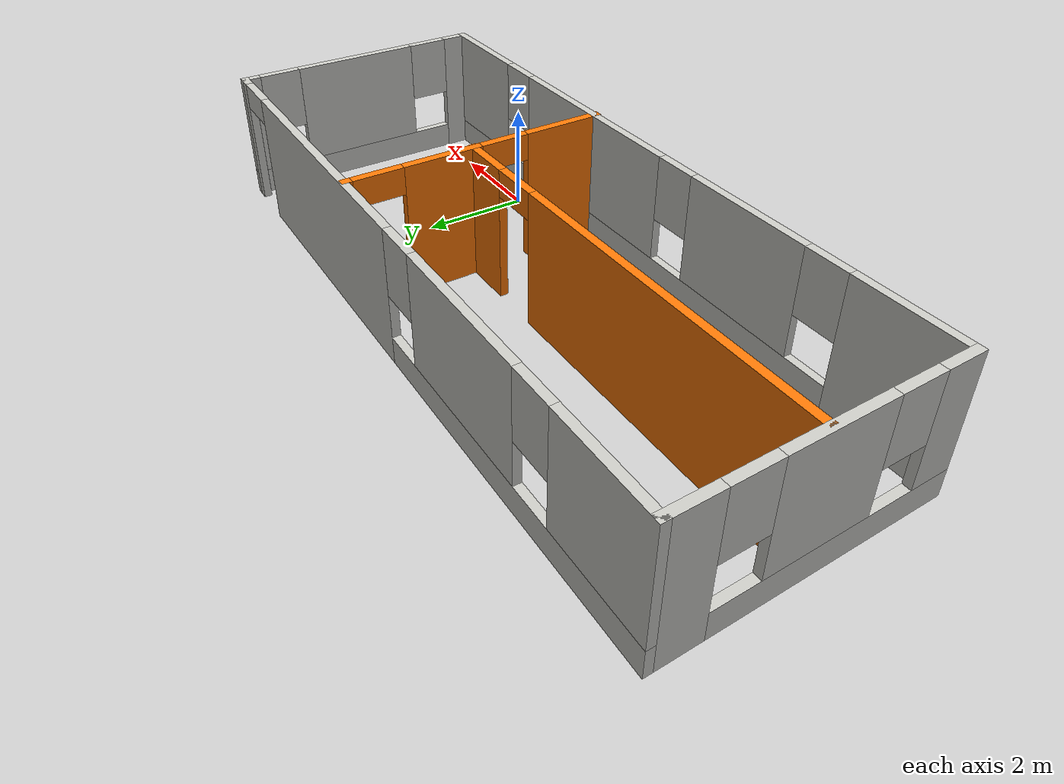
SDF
<?xml version='1.0'?>
<sdf version='1.6'>
  <model name='mybuilding'>
    <pose frame=''>-3.22125 1.87257 0 0 -0 0</pose>
    <link name='Wall_26'>
      <pose frame=''>0 -2.41239 0 0 -0 0</pose>
      <visual name='Wall_26_Visual_0'>
        <pose frame=''>-5.50386 0 1.25 0 -0 0</pose>
        <geometry>
          <box>
            <size>1.99228 0.15 2.5</size>
          </box>
        </geometry>
        <material>
          <script>
            <uri>file://media/materials/scripts/gazebo.material</uri>
            <name>Gazebo/CeilingTiled</name>
          </script>
          <ambient>1 1 1 1</ambient>
        </material>
        <meta>
          <layer>0</layer>
        </meta>
      </visual>
      <collision name='Wall_26_Collision_0'>
        <geometry>
          <box>
            <size>1.99228 0.15 2.5</size>
          </box>
        </geometry>
        <pose frame=''>-5.50386 0 1.25 0 -0 0</pose>
      </collision>
      <visual name='Wall_26_Visual_1'>
        <pose frame=''>0.996138 0 0.25 0 -0 0</pose>
        <geometry>
          <box>
            <size>11.0077 0.15 0.5</size>
          </box>
        </geometry>
        <material>
          <script>
            <uri>file://media/materials/scripts/gazebo.material</uri>
            <name>Gazebo/CeilingTiled</name>
          </script>
          <ambient>1 1 1 1</ambient>
        </material>
        <meta>
          <layer>0</layer>
        </meta>
      </visual>
      <collision name='Wall_26_Collision_1'>
        <geometry>
          <box>
            <size>11.0077 0.15 0.5</size>
          </box>
        </geometry>
        <pose frame=''>0.996138 0 0.25 0 -0 0</pose>
      </collision>
      <visual name='Wall_26_Visual_2'>
        <pose frame=''>-2.49082 0 1.5 0 -0 0</pose>
        <geometry>
          <box>
            <size>2.43381 0.15 2</size>
          </box>
        </geometry>
        <material>
          <script>
            <uri>file://media/materials/scripts/gazebo.material</uri>
            <name>Gazebo/CeilingTiled</name>
          </script>
          <ambient>1 1 1 1</ambient>
        </material>
        <meta>
          <layer>0</layer>
        </meta>
      </visual>
      <collision name='Wall_26_Collision_2'>
        <geometry>
          <box>
            <size>2.43381 0.15 2</size>
          </box>
        </geometry>
        <pose frame=''>-2.49082 0 1.5 0 -0 0</pose>
      </collision>
      <visual name='Wall_26_Visual_3'>
        <pose frame=''>1.55577 0 1.5 0 -0 0</pose>
        <geometry>
          <box>
            <size>4.05936 0.15 2</size>
          </box>
        </geometry>
        <material>
          <script>
            <uri>file://media/materials/scripts/gazebo.material</uri>
            <name>Gazebo/CeilingTiled</name>
          </script>
          <ambient>1 1 1 1</ambient>
        </material>
        <meta>
          <layer>0</layer>
        </meta>
      </visual>
      <collision name='Wall_26_Collision_3'>
        <geometry>
          <box>
            <size>4.05936 0.15 2</size>
          </box>
        </geometry>
        <pose frame=''>1.55577 0 1.5 0 -0 0</pose>
      </collision>
      <visual name='Wall_26_Visual_4'>
        <pose frame=''>5.44272 0 1.5 0 -0 0</pose>
        <geometry>
          <box>
            <size>2.11455 0.15 2</size>
          </box>
        </geometry>
        <material>
          <script>
            <uri>file://media/materials/scripts/gazebo.material</uri>
            <name>Gazebo/CeilingTiled</name>
          </script>
          <ambient>1 1 1 1</ambient>
        </material>
        <meta>
          <layer>0</layer>
        </meta>
      </visual>
      <collision name='Wall_26_Collision_4'>
        <geometry>
          <box>
            <size>2.11455 0.15 2</size>
          </box>
        </geometry>
        <pose frame=''>5.44272 0 1.5 0 -0 0</pose>
      </collision>
      <visual name='Wall_26_Visual_5'>
        <pose frame=''>-4.10772 0 1.9 0 -0 0</pose>
        <geometry>
          <box>
            <size>0.8 0.15 1.2</size>
          </box>
        </geometry>
        <material>
          <script>
            <uri>file://media/materials/scripts/gazebo.material</uri>
            <name>Gazebo/CeilingTiled</name>
          </script>
          <ambient>1 1 1 1</ambient>
        </material>
        <meta>
          <layer>0</layer>
        </meta>
      </visual>
      <collision name='Wall_26_Collision_5'>
        <geometry>
          <box>
            <size>0.8 0.15 1.2</size>
          </box>
        </geometry>
        <pose frame=''>-4.10772 0 1.9 0 -0 0</pose>
      </collision>
      <visual name='Wall_26_Visual_6'>
        <pose frame=''>-0.873914 0 1.9 0 -0 0</pose>
        <geometry>
          <box>
            <size>0.8 0.15 1.2</size>
          </box>
        </geometry>
        <material>
          <script>
            <uri>file://media/materials/scripts/gazebo.material</uri>
            <name>Gazebo/CeilingTiled</name>
          </script>
          <ambient>1 1 1 1</ambient>
        </material>
        <meta>
          <layer>0</layer>
        </meta>
      </visual>
      <collision name='Wall_26_Collision_6'>
        <geometry>
          <box>
            <size>0.8 0.15 1.2</size>
          </box>
        </geometry>
        <pose frame=''>-0.873914 0 1.9 0 -0 0</pose>
      </collision>
      <visual name='Wall_26_Visual_7'>
        <pose frame=''>3.98545 0 1.9 0 -0 0</pose>
        <geometry>
          <box>
            <size>0.8 0.15 1.2</size>
          </box>
        </geometry>
        <material>
          <script>
            <uri>file://media/materials/scripts/gazebo.material</uri>
            <name>Gazebo/CeilingTiled</name>
          </script>
          <ambient>1 1 1 1</ambient>
        </material>
        <meta>
          <layer>0</layer>
        </meta>
      </visual>
      <collision name='Wall_26_Collision_7'>
        <geometry>
          <box>
            <size>0.8 0.15 1.2</size>
          </box>
        </geometry>
        <pose frame=''>3.98545 0 1.9 0 -0 0</pose>
      </collision>
    </link>
    <link name='Wall_27'>
      <pose frame=''>6.425 0.012612 0 0 -0 1.5708</pose>
      <visual name='Wall_27_Visual_0'>
        <pose frame=''>-2.21288 0 1.25 0 -0 0</pose>
        <geometry>
          <box>
            <size>0.574241 0.15 2.5</size>
          </box>
        </geometry>
        <material>
          <script>
            <uri>file://media/materials/scripts/gazebo.material</uri>
            <name>Gazebo/CeilingTiled</name>
          </script>
          <ambient>1 1 1 1</ambient>
        </material>
        <meta>
          <layer>0</layer>
        </meta>
      </visual>
      <collision name='Wall_27_Collision_0'>
        <geometry>
          <box>
            <size>0.574241 0.15 2.5</size>
          </box>
        </geometry>
        <pose frame=''>-2.21288 0 1.25 0 -0 0</pose>
      </collision>
      <visual name='Wall_27_Visual_1'>
        <pose frame=''>0.287121 0 0.25 0 -0 0</pose>
        <geometry>
          <box>
            <size>4.42576 0.15 0.5</size>
          </box>
        </geometry>
        <material>
          <script>
            <uri>file://media/materials/scripts/gazebo.material</uri>
            <name>Gazebo/CeilingTiled</name>
          </script>
          <ambient>1 1 1 1</ambient>
        </material>
        <meta>
          <layer>0</layer>
        </meta>
      </visual>
      <collision name='Wall_27_Collision_1'>
        <geometry>
          <box>
            <size>4.42576 0.15 0.5</size>
          </box>
        </geometry>
        <pose frame=''>0.287121 0 0.25 0 -0 0</pose>
      </collision>
      <visual name='Wall_27_Visual_2'>
        <pose frame=''>0.10844 0 1.5 0 -0 0</pose>
        <geometry>
          <box>
            <size>2.4684 0.15 2</size>
          </box>
        </geometry>
        <material>
          <script>
            <uri>file://media/materials/scripts/gazebo.material</uri>
            <name>Gazebo/CeilingTiled</name>
          </script>
          <ambient>1 1 1 1</ambient>
        </material>
        <meta>
          <layer>0</layer>
        </meta>
      </visual>
      <collision name='Wall_27_Collision_2'>
        <geometry>
          <box>
            <size>2.4684 0.15 2</size>
          </box>
        </geometry>
        <pose frame=''>0.10844 0 1.5 0 -0 0</pose>
      </collision>
      <visual name='Wall_27_Visual_3'>
        <pose frame=''>2.32132 0 1.5 0 -0 0</pose>
        <geometry>
          <box>
            <size>0.357362 0.15 2</size>
          </box>
        </geometry>
        <material>
          <script>
            <uri>file://media/materials/scripts/gazebo.material</uri>
            <name>Gazebo/CeilingTiled</name>
          </script>
          <ambient>1 1 1 1</ambient>
        </material>
        <meta>
          <layer>0</layer>
        </meta>
      </visual>
      <collision name='Wall_27_Collision_3'>
        <geometry>
          <box>
            <size>0.357362 0.15 2</size>
          </box>
        </geometry>
        <pose frame=''>2.32132 0 1.5 0 -0 0</pose>
      </collision>
      <visual name='Wall_27_Visual_4'>
        <pose frame=''>-1.52576 0 1.9 0 -0 0</pose>
        <geometry>
          <box>
            <size>0.8 0.15 1.2</size>
          </box>
        </geometry>
        <material>
          <script>
            <uri>file://media/materials/scripts/gazebo.material</uri>
            <name>Gazebo/CeilingTiled</name>
          </script>
          <ambient>1 1 1 1</ambient>
        </material>
        <meta>
          <layer>0</layer>
        </meta>
      </visual>
      <collision name='Wall_27_Collision_4'>
        <geometry>
          <box>
            <size>0.8 0.15 1.2</size>
          </box>
        </geometry>
        <pose frame=''>-1.52576 0 1.9 0 -0 0</pose>
      </collision>
      <visual name='Wall_27_Visual_5'>
        <pose frame=''>1.74264 0 1.9 0 -0 0</pose>
        <geometry>
          <box>
            <size>0.8 0.15 1.2</size>
          </box>
        </geometry>
        <material>
          <script>
            <uri>file://media/materials/scripts/gazebo.material</uri>
            <name>Gazebo/CeilingTiled</name>
          </script>
          <ambient>1 1 1 1</ambient>
        </material>
        <meta>
          <layer>0</layer>
        </meta>
      </visual>
      <collision name='Wall_27_Collision_5'>
        <geometry>
          <box>
            <size>0.8 0.15 1.2</size>
          </box>
        </geometry>
        <pose frame=''>1.74264 0 1.9 0 -0 0</pose>
      </collision>
    </link>
    <link name='Wall_28'>
      <pose frame=''>0 2.43761 0 0 -0 3.14159</pose>
      <visual name='Wall_28_Visual_0'>
        <pose frame=''>-6.33238 0 1.25 0 -0 0</pose>
        <geometry>
          <box>
            <size>0.335241 0.15 2.5</size>
          </box>
        </geometry>
        <material>
          <script>
            <uri>file://media/materials/scripts/gazebo.material</uri>
            <name>Gazebo/CeilingTiled</name>
          </script>
          <ambient>1 1 1 1</ambient>
        </material>
        <meta>
          <layer>0</layer>
        </meta>
      </visual>
      <collision name='Wall_28_Collision_0'>
        <geometry>
          <box>
            <size>0.335241 0.15 2.5</size>
          </box>
        </geometry>
        <pose frame=''>-6.33238 0 1.25 0 -0 0</pose>
      </collision>
      <visual name='Wall_28_Visual_1'>
        <pose frame=''>-2.55971 0 1.25 0 -0 0</pose>
        <geometry>
          <box>
            <size>5.4101 0.15 2.5</size>
          </box>
        </geometry>
        <material>
          <script>
            <uri>file://media/materials/scripts/gazebo.material</uri>
            <name>Gazebo/CeilingTiled</name>
          </script>
          <ambient>1 1 1 1</ambient>
        </material>
        <meta>
          <layer>0</layer>
        </meta>
      </visual>
      <collision name='Wall_28_Collision_1'>
        <geometry>
          <box>
            <size>5.4101 0.15 2.5</size>
          </box>
        </geometry>
        <pose frame=''>-2.55971 0 1.25 0 -0 0</pose>
      </collision>
      <visual name='Wall_28_Visual_2'>
        <pose frame=''>3.32267 0 0.25 0 -0 0</pose>
        <geometry>
          <box>
            <size>6.35466 0.15 0.5</size>
          </box>
        </geometry>
        <material>
          <script>
            <uri>file://media/materials/scripts/gazebo.material</uri>
            <name>Gazebo/CeilingTiled</name>
          </script>
          <ambient>1 1 1 1</ambient>
        </material>
        <meta>
          <layer>0</layer>
        </meta>
      </visual>
      <collision name='Wall_28_Collision_2'>
        <geometry>
          <box>
            <size>6.35466 0.15 0.5</size>
          </box>
        </geometry>
        <pose frame=''>3.32267 0 0.25 0 -0 0</pose>
      </collision>
      <visual name='Wall_28_Visual_3'>
        <pose frame=''>2.35247 0 1.5 0 -0 0</pose>
        <geometry>
          <box>
            <size>2.81426 0.15 2</size>
          </box>
        </geometry>
        <material>
          <script>
            <uri>file://media/materials/scripts/gazebo.material</uri>
            <name>Gazebo/CeilingTiled</name>
          </script>
          <ambient>1 1 1 1</ambient>
        </material>
        <meta>
          <layer>0</layer>
        </meta>
      </visual>
      <collision name='Wall_28_Collision_3'>
        <geometry>
          <box>
            <size>2.81426 0.15 2</size>
          </box>
        </geometry>
        <pose frame=''>2.35247 0 1.5 0 -0 0</pose>
      </collision>
      <visual name='Wall_28_Visual_4'>
        <pose frame=''>5.5298 0 1.5 0 -0 0</pose>
        <geometry>
          <box>
            <size>1.9404 0.15 2</size>
          </box>
        </geometry>
        <material>
          <script>
            <uri>file://media/materials/scripts/gazebo.material</uri>
            <name>Gazebo/CeilingTiled</name>
          </script>
          <ambient>1 1 1 1</ambient>
        </material>
        <meta>
          <layer>0</layer>
        </meta>
      </visual>
      <collision name='Wall_28_Collision_4'>
        <geometry>
          <box>
            <size>1.9404 0.15 2</size>
          </box>
        </geometry>
        <pose frame=''>5.5298 0 1.5 0 -0 0</pose>
      </collision>
      <visual name='Wall_28_Visual_5'>
        <pose frame=''>0.545345 0 1.9 0 -0 0</pose>
        <geometry>
          <box>
            <size>0.8 0.15 1.2</size>
          </box>
        </geometry>
        <material>
          <script>
            <uri>file://media/materials/scripts/gazebo.material</uri>
            <name>Gazebo/CeilingTiled</name>
          </script>
          <ambient>1 1 1 1</ambient>
        </material>
        <meta>
          <layer>0</layer>
        </meta>
      </visual>
      <collision name='Wall_28_Collision_5'>
        <geometry>
          <box>
            <size>0.8 0.15 1.2</size>
          </box>
        </geometry>
        <pose frame=''>0.545345 0 1.9 0 -0 0</pose>
      </collision>
      <visual name='Wall_28_Visual_6'>
        <pose frame=''>4.1596 0 1.9 0 -0 0</pose>
        <geometry>
          <box>
            <size>0.8 0.15 1.2</size>
          </box>
        </geometry>
        <material>
          <script>
            <uri>file://media/materials/scripts/gazebo.material</uri>
            <name>Gazebo/CeilingTiled</name>
          </script>
          <ambient>1 1 1 1</ambient>
        </material>
        <meta>
          <layer>0</layer>
        </meta>
      </visual>
      <collision name='Wall_28_Collision_6'>
        <geometry>
          <box>
            <size>0.8 0.15 1.2</size>
          </box>
        </geometry>
        <pose frame=''>4.1596 0 1.9 0 -0 0</pose>
      </collision>
      <visual name='Wall_28_Visual_7'>
        <pose frame=''>-5.71476 0 2.25 0 -0 0</pose>
        <geometry>
          <box>
            <size>0.9 0.15 0.5</size>
          </box>
        </geometry>
        <material>
          <script>
            <uri>file://media/materials/scripts/gazebo.material</uri>
            <name>Gazebo/CeilingTiled</name>
          </script>
          <ambient>1 1 1 1</ambient>
        </material>
        <meta>
          <layer>0</layer>
        </meta>
      </visual>
      <collision name='Wall_28_Collision_7'>
        <geometry>
          <box>
            <size>0.9 0.15 0.5</size>
          </box>
        </geometry>
        <pose frame=''>-5.71476 0 2.25 0 -0 0</pose>
      </collision>
    </link>
    <link name='Wall_29'>
      <pose frame=''>-6.425 0.012612 0 0 0 -1.5708</pose>
      <visual name='Wall_29_Visual_0'>
        <pose frame=''>-2.05328 0 1.25 0 -0 0</pose>
        <geometry>
          <box>
            <size>0.893448 0.15 2.5</size>
          </box>
        </geometry>
        <material>
          <script>
            <uri>file://media/materials/scripts/gazebo.material</uri>
            <name>Gazebo/CeilingTiled</name>
          </script>
          <ambient>1 1 1 1</ambient>
        </material>
        <meta>
          <layer>0</layer>
        </meta>
      </visual>
      <collision name='Wall_29_Collision_0'>
        <geometry>
          <box>
            <size>0.893448 0.15 2.5</size>
          </box>
        </geometry>
        <pose frame=''>-2.05328 0 1.25 0 -0 0</pose>
      </collision>
      <visual name='Wall_29_Visual_1'>
        <pose frame=''>0.446724 0 0.25 0 -0 0</pose>
        <geometry>
          <box>
            <size>4.10655 0.15 0.5</size>
          </box>
        </geometry>
        <material>
          <script>
            <uri>file://media/materials/scripts/gazebo.material</uri>
            <name>Gazebo/CeilingTiled</name>
          </script>
          <ambient>1 1 1 1</ambient>
        </material>
        <meta>
          <layer>0</layer>
        </meta>
      </visual>
      <collision name='Wall_29_Collision_1'>
        <geometry>
          <box>
            <size>4.10655 0.15 0.5</size>
          </box>
        </geometry>
        <pose frame=''>0.446724 0 0.25 0 -0 0</pose>
      </collision>
      <visual name='Wall_29_Visual_2'>
        <pose frame=''>0.090431 0 1.5 0 -0 0</pose>
        <geometry>
          <box>
            <size>1.79397 0.15 2</size>
          </box>
        </geometry>
        <material>
          <script>
            <uri>file://media/materials/scripts/gazebo.material</uri>
            <name>Gazebo/CeilingTiled</name>
          </script>
          <ambient>1 1 1 1</ambient>
        </material>
        <meta>
          <layer>0</layer>
        </meta>
      </visual>
      <collision name='Wall_29_Collision_2'>
        <geometry>
          <box>
            <size>1.79397 0.15 2</size>
          </box>
        </geometry>
        <pose frame=''>0.090431 0 1.5 0 -0 0</pose>
      </collision>
      <visual name='Wall_29_Visual_3'>
        <pose frame=''>2.14371 0 1.5 0 -0 0</pose>
        <geometry>
          <box>
            <size>0.712586 0.15 2</size>
          </box>
        </geometry>
        <material>
          <script>
            <uri>file://media/materials/scripts/gazebo.material</uri>
            <name>Gazebo/CeilingTiled</name>
          </script>
          <ambient>1 1 1 1</ambient>
        </material>
        <meta>
          <layer>0</layer>
        </meta>
      </visual>
      <collision name='Wall_29_Collision_3'>
        <geometry>
          <box>
            <size>0.712586 0.15 2</size>
          </box>
        </geometry>
        <pose frame=''>2.14371 0 1.5 0 -0 0</pose>
      </collision>
      <visual name='Wall_29_Visual_4'>
        <pose frame=''>-1.20655 0 1.9 0 -0 0</pose>
        <geometry>
          <box>
            <size>0.8 0.15 1.2</size>
          </box>
        </geometry>
        <material>
          <script>
            <uri>file://media/materials/scripts/gazebo.material</uri>
            <name>Gazebo/CeilingTiled</name>
          </script>
          <ambient>1 1 1 1</ambient>
        </material>
        <meta>
          <layer>0</layer>
        </meta>
      </visual>
      <collision name='Wall_29_Collision_4'>
        <geometry>
          <box>
            <size>0.8 0.15 1.2</size>
          </box>
        </geometry>
        <pose frame=''>-1.20655 0 1.9 0 -0 0</pose>
      </collision>
      <visual name='Wall_29_Visual_5'>
        <pose frame=''>1.38741 0 1.9 0 -0 0</pose>
        <geometry>
          <box>
            <size>0.8 0.15 1.2</size>
          </box>
        </geometry>
        <material>
          <script>
            <uri>file://media/materials/scripts/gazebo.material</uri>
            <name>Gazebo/CeilingTiled</name>
          </script>
          <ambient>1 1 1 1</ambient>
        </material>
        <meta>
          <layer>0</layer>
        </meta>
      </visual>
      <collision name='Wall_29_Collision_5'>
        <geometry>
          <box>
            <size>0.8 0.15 1.2</size>
          </box>
        </geometry>
        <pose frame=''>1.38741 0 1.9 0 -0 0</pose>
      </collision>
    </link>
    <link name='Wall_31'>
      <pose frame=''>1.47795 -0.012612 0 0 0 -1.5708</pose>
      <visual name='Wall_31_Visual_0'>
        <pose frame=''>-2.41081 0 1.25 0 -0 0</pose>
        <geometry>
          <box>
            <size>0.178379 0.15 2.5</size>
          </box>
        </geometry>
        <material>
          <script>
            <uri>file://media/materials/scripts/gazebo.material</uri>
            <name>Gazebo/Grey</name>
          </script>
          <ambient>0.996078 0.47451 0.0196078 1</ambient>
        </material>
        <meta>
          <layer>0</layer>
        </meta>
      </visual>
      <collision name='Wall_31_Collision_0'>
        <geometry>
          <box>
            <size>0.178379 0.15 2.5</size>
          </box>
        </geometry>
        <pose frame=''>-2.41081 0 1.25 0 -0 0</pose>
      </collision>
      <visual name='Wall_31_Visual_1'>
        <pose frame=''>-0.687043 0 1.25 0 -0 0</pose>
        <geometry>
          <box>
            <size>1.46915 0.15 2.5</size>
          </box>
        </geometry>
        <material>
          <script>
            <uri>file://media/materials/scripts/gazebo.material</uri>
            <name>Gazebo/Grey</name>
          </script>
          <ambient>0.996078 0.47451 0.0196078 1</ambient>
        </material>
        <meta>
          <layer>0</layer>
        </meta>
      </visual>
      <collision name='Wall_31_Collision_1'>
        <geometry>
          <box>
            <size>1.46915 0.15 2.5</size>
          </box>
        </geometry>
        <pose frame=''>-0.687043 0 1.25 0 -0 0</pose>
      </collision>
      <visual name='Wall_31_Visual_2'>
        <pose frame=''>1.72377 0 1.25 0 -0 0</pose>
        <geometry>
          <box>
            <size>1.55246 0.15 2.5</size>
          </box>
        </geometry>
        <material>
          <script>
            <uri>file://media/materials/scripts/gazebo.material</uri>
            <name>Gazebo/Grey</name>
          </script>
          <ambient>0.996078 0.47451 0.0196078 1</ambient>
        </material>
        <meta>
          <layer>0</layer>
        </meta>
      </visual>
      <collision name='Wall_31_Collision_2'>
        <geometry>
          <box>
            <size>1.55246 0.15 2.5</size>
          </box>
        </geometry>
        <pose frame=''>1.72377 0 1.25 0 -0 0</pose>
      </collision>
      <visual name='Wall_31_Visual_3'>
        <pose frame=''>-1.87162 0 2.25 0 -0 0</pose>
        <geometry>
          <box>
            <size>0.9 0.15 0.5</size>
          </box>
        </geometry>
        <material>
          <script>
            <uri>file://media/materials/scripts/gazebo.material</uri>
            <name>Gazebo/Grey</name>
          </script>
          <ambient>0.996078 0.47451 0.0196078 1</ambient>
        </material>
        <meta>
          <layer>0</layer>
        </meta>
      </visual>
      <collision name='Wall_31_Collision_3'>
        <geometry>
          <box>
            <size>0.9 0.15 0.5</size>
          </box>
        </geometry>
        <pose frame=''>-1.87162 0 2.25 0 -0 0</pose>
      </collision>
      <visual name='Wall_31_Visual_4'>
        <pose frame=''>0.497535 0 2.25 0 -0 0</pose>
        <geometry>
          <box>
            <size>0.9 0.15 0.5</size>
          </box>
        </geometry>
        <material>
          <script>
            <uri>file://media/materials/scripts/gazebo.material</uri>
            <name>Gazebo/Grey</name>
          </script>
          <ambient>0.996078 0.47451 0.0196078 1</ambient>
        </material>
        <meta>
          <layer>0</layer>
        </meta>
      </visual>
      <collision name='Wall_31_Collision_4'>
        <geometry>
          <box>
            <size>0.9 0.15 0.5</size>
          </box>
        </geometry>
        <pose frame=''>0.497535 0 2.25 0 -0 0</pose>
      </collision>
    </link>
    <link name='Wall_33'>
      <pose frame=''>-2.42976 0.077819 0 0 -0 3.14159</pose>
      <visual name='Wall_33_Visual_0'>
        <pose frame=''>-3.47848 0 1.25 0 -0 0</pose>
        <geometry>
          <box>
            <size>1.04303 0.15 2.5</size>
          </box>
        </geometry>
        <material>
          <script>
            <uri>file://media/materials/scripts/gazebo.material</uri>
            <name>Gazebo/Grey</name>
          </script>
          <ambient>0.996078 0.47451 0.0196078 1</ambient>
        </material>
        <meta>
          <layer>0</layer>
        </meta>
      </visual>
      <collision name='Wall_33_Collision_0'>
        <geometry>
          <box>
            <size>1.04303 0.15 2.5</size>
          </box>
        </geometry>
        <pose frame=''>-3.47848 0 1.25 0 -0 0</pose>
      </collision>
      <visual name='Wall_33_Visual_1'>
        <pose frame=''>0.971517 0 1.25 0 -0 0</pose>
        <geometry>
          <box>
            <size>6.05697 0.15 2.5</size>
          </box>
        </geometry>
        <material>
          <script>
            <uri>file://media/materials/scripts/gazebo.material</uri>
            <name>Gazebo/Grey</name>
          </script>
          <ambient>0.996078 0.47451 0.0196078 1</ambient>
        </material>
        <meta>
          <layer>0</layer>
        </meta>
      </visual>
      <collision name='Wall_33_Collision_1'>
        <geometry>
          <box>
            <size>6.05697 0.15 2.5</size>
          </box>
        </geometry>
        <pose frame=''>0.971517 0 1.25 0 -0 0</pose>
      </collision>
      <visual name='Wall_33_Visual_2'>
        <pose frame=''>-2.50697 0 2.25 0 -0 0</pose>
        <geometry>
          <box>
            <size>0.9 0.15 0.5</size>
          </box>
        </geometry>
        <material>
          <script>
            <uri>file://media/materials/scripts/gazebo.material</uri>
            <name>Gazebo/Grey</name>
          </script>
          <ambient>0.996078 0.47451 0.0196078 1</ambient>
        </material>
        <meta>
          <layer>0</layer>
        </meta>
      </visual>
      <collision name='Wall_33_Collision_2'>
        <geometry>
          <box>
            <size>0.9 0.15 0.5</size>
          </box>
        </geometry>
        <pose frame=''>-2.50697 0 2.25 0 -0 0</pose>
      </collision>
    </link>
    <static>1</static>
  </model>
</sdf>
